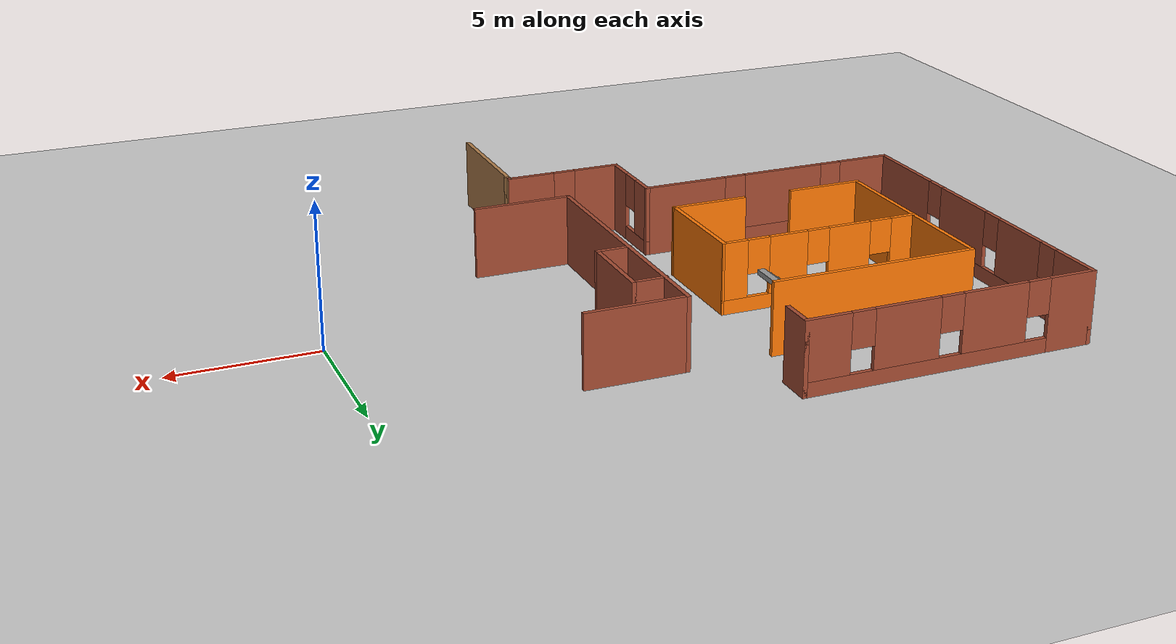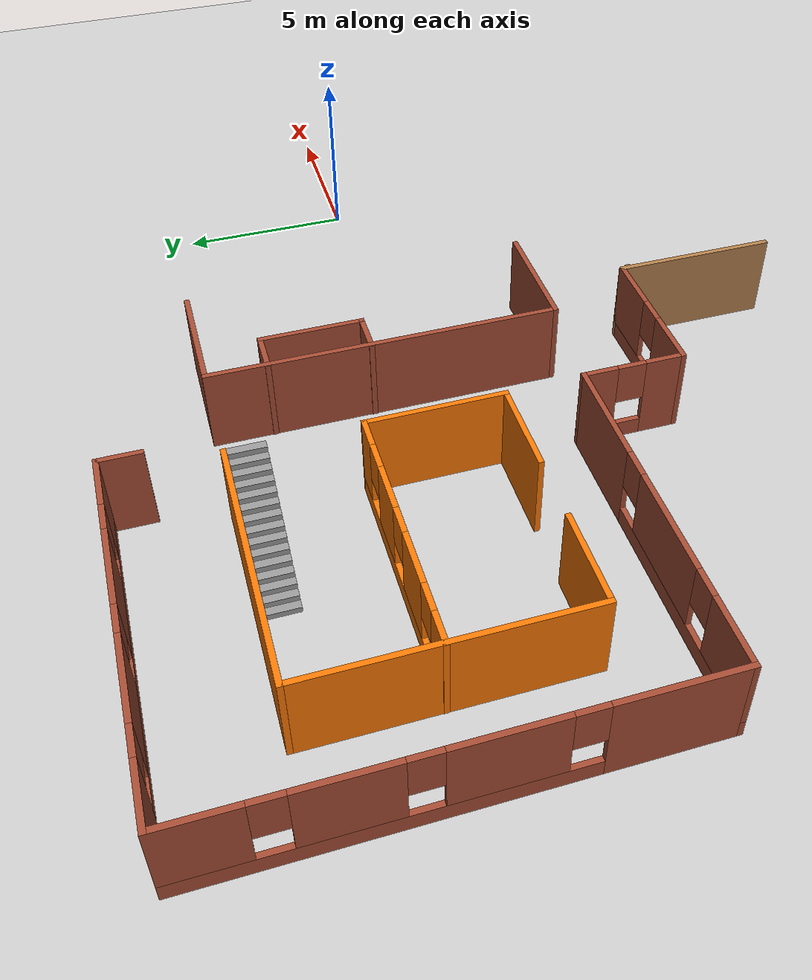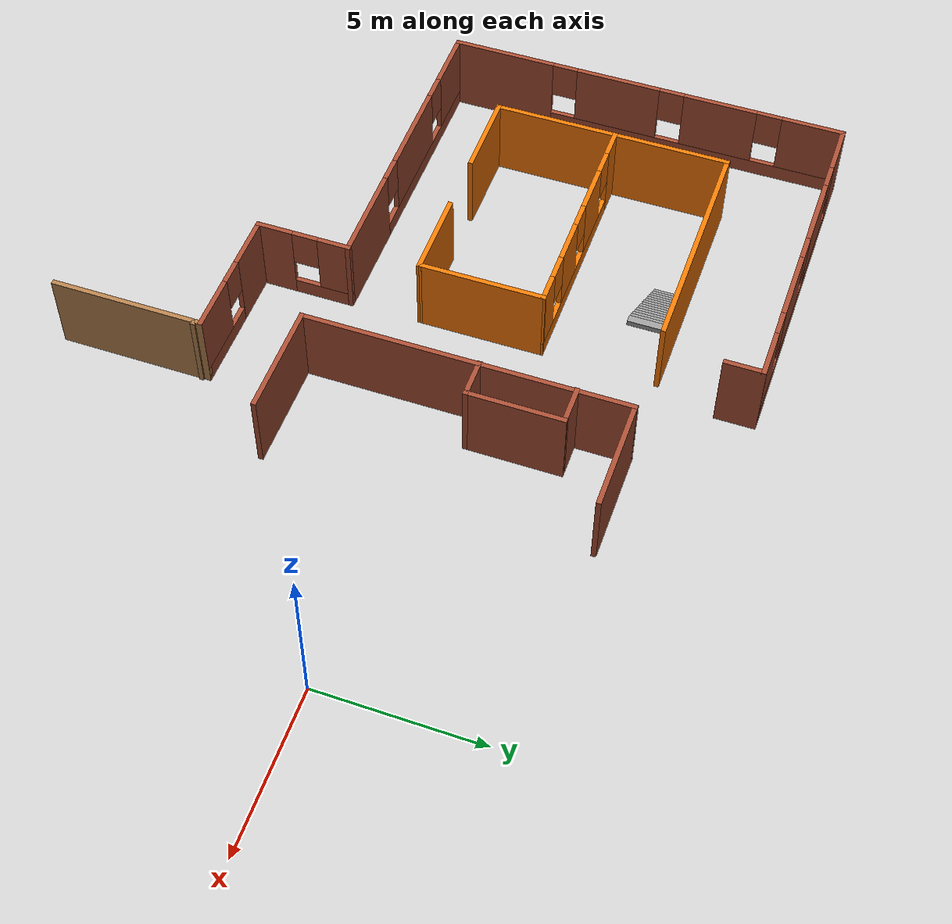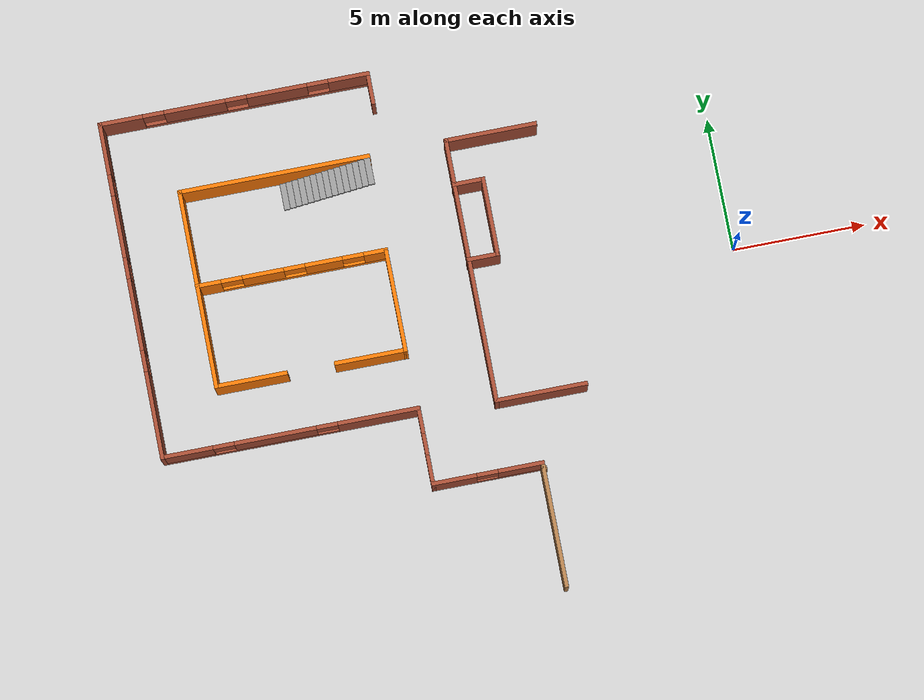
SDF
<sdf version="1.7">
 <world name="default">
  <model name="ground_plane">
   <static>1</static>
   <link name="link">
    <collision name="collision">
     <geometry><plane><normal>0 0 1</normal><size>100 100</size></plane></geometry>
     <surface><friction><ode><mu>100</mu><mu2>50</mu2></ode></friction></surface>
    </collision>
    <visual name="visual">
     <cast_shadows>0</cast_shadows>
     <geometry><plane><normal>0 0 1</normal><size>100 100</size></plane></geometry>
     <material>
      <script><uri>file://media/materials/scripts/gazebo.material</uri><name>Gazebo/Grey</name></script>
     </material>
    </visual>
   </link>
  </model>
  <model name="west_2">
   <pose>-7.94174 -1.25517 0 0 -0 0</pose>
   <link name="Stairs_4">
    <visual name="Stairs_4_Visual_0">
     <pose>-8.14297 6.41437 0.083333 0 -0 1.5708</pose>
     <geometry><box><size>1 0.233333 0.166667</size></box></geometry>
     <material>
      <script><uri>file://media/materials/scripts/gazebo.material</uri><name>Gazebo/Grey</name></script>
      <ambient>1 1 1 1</ambient>
     </material>
     <meta><layer>0</layer></meta>
    </visual>
    <collision name="Stairs_4_Collision_0">
     <geometry><box><size>1 0.233333 0.166667</size></box></geometry>
     <pose>-8.14297 6.41437 0.083333 0 -0 1.5708</pose>
    </collision>
    <visual name="Stairs_4_Visual_1">
     <pose>-7.90963 6.41437 0.25 0 -0 1.5708</pose>
     <geometry><box><size>1 0.233333 0.166667</size></box></geometry>
     <material>
      <script><uri>file://media/materials/scripts/gazebo.material</uri><name>Gazebo/Grey</name></script>
      <ambient>1 1 1 1</ambient>
     </material>
     <meta><layer>0</layer></meta>
    </visual>
    <collision name="Stairs_4_Collision_1">
     <geometry><box><size>1 0.233333 0.166667</size></box></geometry>
     <pose>-7.90963 6.41437 0.25 0 -0 1.5708</pose>
    </collision>
    <visual name="Stairs_4_Visual_2">
     <pose>-7.6763 6.41437 0.416667 0 -0 1.5708</pose>
     <geometry><box><size>1 0.233333 0.166667</size></box></geometry>
     <material>
      <script><uri>file://media/materials/scripts/gazebo.material</uri><name>Gazebo/Grey</name></script>
      <ambient>1 1 1 1</ambient>
     </material>
     <meta><layer>0</layer></meta>
    </visual>
    <collision name="Stairs_4_Collision_2">
     <geometry><box><size>1 0.233333 0.166667</size></box></geometry>
     <pose>-7.6763 6.41437 0.416667 0 -0 1.5708</pose>
    </collision>
    <visual name="Stairs_4_Visual_3">
     <pose>-7.44297 6.41437 0.583333 0 -0 1.5708</pose>
     <geometry><box><size>1 0.233333 0.166667</size></box></geometry>
     <material>
      <script><uri>file://media/materials/scripts/gazebo.material</uri><name>Gazebo/Grey</name></script>
      <ambient>1 1 1 1</ambient>
     </material>
     <meta><layer>0</layer></meta>
    </visual>
    <collision name="Stairs_4_Collision_3">
     <geometry><box><size>1 0.233333 0.166667</size></box></geometry>
     <pose>-7.44297 6.41437 0.583333 0 -0 1.5708</pose>
    </collision>
    <visual name="Stairs_4_Visual_4">
     <pose>-7.20963 6.41437 0.75 0 -0 1.5708</pose>
     <geometry><box><size>1 0.233333 0.166667</size></box></geometry>
     <material>
      <script><uri>file://media/materials/scripts/gazebo.material</uri><name>Gazebo/Grey</name></script>
      <ambient>1 1 1 1</ambient>
     </material>
     <meta><layer>0</layer></meta>
    </visual>
    <collision name="Stairs_4_Collision_4">
     <geometry><box><size>1 0.233333 0.166667</size></box></geometry>
     <pose>-7.20963 6.41437 0.75 0 -0 1.5708</pose>
    </collision>
    <visual name="Stairs_4_Visual_5">
     <pose>-6.9763 6.41437 0.916667 0 -0 1.5708</pose>
     <geometry><box><size>1 0.233333 0.166667</size></box></geometry>
     <material>
      <script><uri>file://media/materials/scripts/gazebo.material</uri><name>Gazebo/Grey</name></script>
      <ambient>1 1 1 1</ambient>
     </material>
     <meta><layer>0</layer></meta>
    </visual>
    <collision name="Stairs_4_Collision_5">
     <geometry><box><size>1 0.233333 0.166667</size></box></geometry>
     <pose>-6.9763 6.41437 0.916667 0 -0 1.5708</pose>
    </collision>
    <visual name="Stairs_4_Visual_6">
     <pose>-6.74297 6.41437 1.08333 0 -0 1.5708</pose>
     <geometry><box><size>1 0.233333 0.166667</size></box></geometry>
     <material>
      <script><uri>file://media/materials/scripts/gazebo.material</uri><name>Gazebo/Grey</name></script>
      <ambient>1 1 1 1</ambient>
     </material>
     <meta><layer>0</layer></meta>
    </visual>
    <collision name="Stairs_4_Collision_6">
     <geometry><box><size>1 0.233333 0.166667</size></box></geometry>
     <pose>-6.74297 6.41437 1.08333 0 -0 1.5708</pose>
    </collision>
    <visual name="Stairs_4_Visual_7">
     <pose>-6.50963 6.41437 1.25 0 -0 1.5708</pose>
     <geometry><box><size>1 0.233333 0.166667</size></box></geometry>
     <material>
      <script><uri>file://media/materials/scripts/gazebo.material</uri><name>Gazebo/Grey</name></script>
      <ambient>1 1 1 1</ambient>
     </material>
     <meta><layer>0</layer></meta>
    </visual>
    <collision name="Stairs_4_Collision_7">
     <geometry><box><size>1 0.233333 0.166667</size></box></geometry>
     <pose>-6.50963 6.41437 1.25 0 -0 1.5708</pose>
    </collision>
    <visual name="Stairs_4_Visual_8">
     <pose>-6.2763 6.41437 1.41667 0 -0 1.5708</pose>
     <geometry><box><size>1 0.233333 0.166667</size></box></geometry>
     <material>
      <script><uri>file://media/materials/scripts/gazebo.material</uri><name>Gazebo/Grey</name></script>
      <ambient>1 1 1 1</ambient>
     </material>
     <meta><layer>0</layer></meta>
    </visual>
    <collision name="Stairs_4_Collision_8">
     <geometry><box><size>1 0.233333 0.166667</size></box></geometry>
     <pose>-6.2763 6.41437 1.41667 0 -0 1.5708</pose>
    </collision>
    <visual name="Stairs_4_Visual_9">
     <pose>-6.04297 6.41437 1.58333 0 -0 1.5708</pose>
     <geometry><box><size>1 0.233333 0.166667</size></box></geometry>
     <material>
      <script><uri>file://media/materials/scripts/gazebo.material</uri><name>Gazebo/Grey</name></script>
      <ambient>1 1 1 1</ambient>
     </material>
     <meta><layer>0</layer></meta>
    </visual>
    <collision name="Stairs_4_Collision_9">
     <geometry><box><size>1 0.233333 0.166667</size></box></geometry>
     <pose>-6.04297 6.41437 1.58333 0 -0 1.5708</pose>
    </collision>
    <visual name="Stairs_4_Visual_10">
     <pose>-5.80963 6.41437 1.75 0 -0 1.5708</pose>
     <geometry><box><size>1 0.233333 0.166667</size></box></geometry>
     <material>
      <script><uri>file://media/materials/scripts/gazebo.material</uri><name>Gazebo/Grey</name></script>
      <ambient>1 1 1 1</ambient>
     </material>
     <meta><layer>0</layer></meta>
    </visual>
    <collision name="Stairs_4_Collision_10">
     <geometry><box><size>1 0.233333 0.166667</size></box></geometry>
     <pose>-5.80963 6.41437 1.75 0 -0 1.5708</pose>
    </collision>
    <visual name="Stairs_4_Visual_11">
     <pose>-5.5763 6.41437 1.91667 0 -0 1.5708</pose>
     <geometry><box><size>1 0.233333 0.166667</size></box></geometry>
     <material>
      <script><uri>file://media/materials/scripts/gazebo.material</uri><name>Gazebo/Grey</name></script>
      <ambient>1 1 1 1</ambient>
     </material>
     <meta><layer>0</layer></meta>
    </visual>
    <collision name="Stairs_4_Collision_11">
     <geometry><box><size>1 0.233333 0.166667</size></box></geometry>
     <pose>-5.5763 6.41437 1.91667 0 -0 1.5708</pose>
    </collision>
    <visual name="Stairs_4_Visual_12">
     <pose>-5.34297 6.41437 2.08333 0 -0 1.5708</pose>
     <geometry><box><size>1 0.233333 0.166667</size></box></geometry>
     <material>
      <script><uri>file://media/materials/scripts/gazebo.material</uri><name>Gazebo/Grey</name></script>
      <ambient>1 1 1 1</ambient>
     </material>
     <meta><layer>0</layer></meta>
    </visual>
    <collision name="Stairs_4_Collision_12">
     <geometry><box><size>1 0.233333 0.166667</size></box></geometry>
     <pose>-5.34297 6.41437 2.08333 0 -0 1.5708</pose>
    </collision>
    <visual name="Stairs_4_Visual_13">
     <pose>-5.10963 6.41437 2.25 0 -0 1.5708</pose>
     <geometry><box><size>1 0.233333 0.166667</size></box></geometry>
     <material>
      <script><uri>file://media/materials/scripts/gazebo.material</uri><name>Gazebo/Grey</name></script>
      <ambient>1 1 1 1</ambient>
     </material>
     <meta><layer>0</layer></meta>
    </visual>
    <collision name="Stairs_4_Collision_13">
     <geometry><box><size>1 0.233333 0.166667</size></box></geometry>
     <pose>-5.10963 6.41437 2.25 0 -0 1.5708</pose>
    </collision>
    <visual name="Stairs_4_Visual_14">
     <pose>-4.8763 6.41437 2.41667 0 -0 1.5708</pose>
     <geometry><box><size>1 0.233333 0.166667</size></box></geometry>
     <material>
      <script><uri>file://media/materials/scripts/gazebo.material</uri><name>Gazebo/Grey</name></script>
      <ambient>1 1 1 1</ambient>
     </material>
     <meta><layer>0</layer></meta>
    </visual>
    <collision name="Stairs_4_Collision_14">
     <geometry><box><size>1 0.233333 0.166667</size></box></geometry>
     <pose>-4.8763 6.41437 2.41667 0 -0 1.5708</pose>
    </collision>
   </link>
   <link name="Wall_33">
    <pose>-4.75 -4 0 0 -0 1.5708</pose>
    <visual name="Wall_33_Visual_0">
     <pose>-0.919405 0 1.25 0 -0 0</pose>
     <geometry><box><size>1.16119 0.15 2.5</size></box></geometry>
     <material>
      <script><uri>file://media/materials/scripts/gazebo.material</uri><name>Gazebo/Bricks</name></script>
      <ambient>1 1 1 1</ambient>
     </material>
     <meta><layer>0</layer></meta>
    </visual>
    <collision name="Wall_33_Collision_0">
     <geometry><box><size>1.16119 0.15 2.5</size></box></geometry>
     <pose>-0.919405 0 1.25 0 -0 0</pose>
    </collision>
    <visual name="Wall_33_Visual_1">
     <pose>0.580595 0 0.25 0 -0 0</pose>
     <geometry><box><size>1.83881 0.15 0.5</size></box></geometry>
     <material>
      <script><uri>file://media/materials/scripts/gazebo.material</uri><name>Gazebo/Bricks</name></script>
      <ambient>1 1 1 1</ambient>
     </material>
     <meta><layer>0</layer></meta>
    </visual>
    <collision name="Wall_33_Collision_1">
     <geometry><box><size>1.83881 0.15 0.5</size></box></geometry>
     <pose>0.580595 0 0.25 0 -0 0</pose>
    </collision>
    <visual name="Wall_33_Visual_2">
     <pose>0.980595 0 1.5 0 -0 0</pose>
     <geometry><box><size>1.03881 0.15 2</size></box></geometry>
     <material>
      <script><uri>file://media/materials/scripts/gazebo.material</uri><name>Gazebo/Bricks</name></script>
      <ambient>1 1 1 1</ambient>
     </material>
     <meta><layer>0</layer></meta>
    </visual>
    <collision name="Wall_33_Collision_2">
     <geometry><box><size>1.03881 0.15 2</size></box></geometry>
     <pose>0.980595 0 1.5 0 -0 0</pose>
    </collision>
    <visual name="Wall_33_Visual_3">
     <pose>0.06119 0 1.9 0 -0 0</pose>
     <geometry><box><size>0.8 0.15 1.2</size></box></geometry>
     <material>
      <script><uri>file://media/materials/scripts/gazebo.material</uri><name>Gazebo/Bricks</name></script>
      <ambient>1 1 1 1</ambient>
     </material>
     <meta><layer>0</layer></meta>
    </visual>
    <collision name="Wall_33_Collision_3">
     <geometry><box><size>0.8 0.15 1.2</size></box></geometry>
     <pose>0.06119 0 1.9 0 -0 0</pose>
    </collision>
   </link>
   <link name="Wall_34">
    <pose>-9.55 -2.575 0 0 -0 3.14159</pose>
    <visual name="Wall_34_Visual_0">
     <pose>-3.32251 0 1.25 0 -0 0</pose>
     <geometry><box><size>3.10499 0.15 2.5</size></box></geometry>
     <material>
      <script><uri>file://media/materials/scripts/gazebo.material</uri><name>Gazebo/Bricks</name></script>
      <ambient>1 1 1 1</ambient>
     </material>
     <meta><layer>0</layer></meta>
    </visual>
    <collision name="Wall_34_Collision_0">
     <geometry><box><size>3.10499 0.15 2.5</size></box></geometry>
     <pose>-3.32251 0 1.25 0 -0 0</pose>
    </collision>
    <visual name="Wall_34_Visual_1">
     <pose>1.55249 0 0.25 0 -0 0</pose>
     <geometry><box><size>6.64501 0.15 0.5</size></box></geometry>
     <material>
      <script><uri>file://media/materials/scripts/gazebo.material</uri><name>Gazebo/Bricks</name></script>
      <ambient>1 1 1 1</ambient>
     </material>
     <meta><layer>0</layer></meta>
    </visual>
    <collision name="Wall_34_Collision_1">
     <geometry><box><size>6.64501 0.15 0.5</size></box></geometry>
     <pose>1.55249 0 0.25 0 -0 0</pose>
    </collision>
    <visual name="Wall_34_Visual_2">
     <pose>0.566097 0 1.5 0 -0 0</pose>
     <geometry><box><size>3.07222 0.15 2</size></box></geometry>
     <material>
      <script><uri>file://media/materials/scripts/gazebo.material</uri><name>Gazebo/Bricks</name></script>
      <ambient>1 1 1 1</ambient>
     </material>
     <meta><layer>0</layer></meta>
    </visual>
    <collision name="Wall_34_Collision_2">
     <geometry><box><size>3.07222 0.15 2</size></box></geometry>
     <pose>0.566097 0 1.5 0 -0 0</pose>
    </collision>
    <visual name="Wall_34_Visual_3">
     <pose>3.8886 0 1.5 0 -0 0</pose>
     <geometry><box><size>1.97279 0.15 2</size></box></geometry>
     <material>
      <script><uri>file://media/materials/scripts/gazebo.material</uri><name>Gazebo/Bricks</name></script>
      <ambient>1 1 1 1</ambient>
     </material>
     <meta><layer>0</layer></meta>
    </visual>
    <collision name="Wall_34_Collision_3">
     <geometry><box><size>1.97279 0.15 2</size></box></geometry>
     <pose>3.8886 0 1.5 0 -0 0</pose>
    </collision>
    <visual name="Wall_34_Visual_4">
     <pose>-1.37001 0 1.9 0 -0 0</pose>
     <geometry><box><size>0.8 0.15 1.2</size></box></geometry>
     <material>
      <script><uri>file://media/materials/scripts/gazebo.material</uri><name>Gazebo/Bricks</name></script>
      <ambient>1 1 1 1</ambient>
     </material>
     <meta><layer>0</layer></meta>
    </visual>
    <collision name="Wall_34_Collision_4">
     <geometry><box><size>0.8 0.15 1.2</size></box></geometry>
     <pose>-1.37001 0 1.9 0 -0 0</pose>
    </collision>
    <visual name="Wall_34_Visual_5">
     <pose>2.50221 0 1.9 0 -0 0</pose>
     <geometry><box><size>0.8 0.15 1.2</size></box></geometry>
     <material>
      <script><uri>file://media/materials/scripts/gazebo.material</uri><name>Gazebo/Bricks</name></script>
      <ambient>1 1 1 1</ambient>
     </material>
     <meta><layer>0</layer></meta>
    </visual>
    <collision name="Wall_34_Collision_5">
     <geometry><box><size>0.8 0.15 1.2</size></box></geometry>
     <pose>2.50221 0 1.9 0 -0 0</pose>
    </collision>
   </link>
   <link name="Wall_35">
    <pose>-14.35 3.725 0 0 -0 1.5708</pose>
    <visual name="Wall_35_Visual_0">
     <pose>-4.72236 0 1.25 0 -0 0</pose>
     <geometry><box><size>3.30527 0.15 2.5</size></box></geometry>
     <material>
      <script><uri>file://media/materials/scripts/gazebo.material</uri><name>Gazebo/Bricks</name></script>
      <ambient>1 1 1 1</ambient>
     </material>
     <meta><layer>0</layer></meta>
    </visual>
    <collision name="Wall_35_Collision_0">
     <geometry><box><size>3.30527 0.15 2.5</size></box></geometry>
     <pose>-4.72236 0 1.25 0 -0 0</pose>
    </collision>
    <visual name="Wall_35_Visual_1">
     <pose>1.65264 0 0.25 0 -0 0</pose>
     <geometry><box><size>9.44473 0.15 0.5</size></box></geometry>
     <material>
      <script><uri>file://media/materials/scripts/gazebo.material</uri><name>Gazebo/Bricks</name></script>
      <ambient>1 1 1 1</ambient>
     </material>
     <meta><layer>0</layer></meta>
    </visual>
    <collision name="Wall_35_Collision_1">
     <geometry><box><size>9.44473 0.15 0.5</size></box></geometry>
     <pose>1.65264 0 0.25 0 -0 0</pose>
    </collision>
    <visual name="Wall_35_Visual_2">
     <pose>-0.914561 0 1.5 0 -0 0</pose>
     <geometry><box><size>2.71033 0.15 2</size></box></geometry>
     <material>
      <script><uri>file://media/materials/scripts/gazebo.material</uri><name>Gazebo/Bricks</name></script>
      <ambient>1 1 1 1</ambient>
     </material>
     <meta><layer>0</layer></meta>
    </visual>
    <collision name="Wall_35_Collision_2">
     <geometry><box><size>2.71033 0.15 2</size></box></geometry>
     <pose>-0.914561 0 1.5 0 -0 0</pose>
    </collision>
    <visual name="Wall_35_Visual_3">
     <pose>2.41483 0 1.5 0 -0 0</pose>
     <geometry><box><size>2.34844 0.15 2</size></box></geometry>
     <material>
      <script><uri>file://media/materials/scripts/gazebo.material</uri><name>Gazebo/Bricks</name></script>
      <ambient>1 1 1 1</ambient>
     </material>
     <meta><layer>0</layer></meta>
    </visual>
    <collision name="Wall_35_Collision_3">
     <geometry><box><size>2.34844 0.15 2</size></box></geometry>
     <pose>2.41483 0 1.5 0 -0 0</pose>
    </collision>
    <visual name="Wall_35_Visual_4">
     <pose>5.38202 0 1.5 0 -0 0</pose>
     <geometry><box><size>1.98595 0.15 2</size></box></geometry>
     <material>
      <script><uri>file://media/materials/scripts/gazebo.material</uri><name>Gazebo/Bricks</name></script>
      <ambient>1 1 1 1</ambient>
     </material>
     <meta><layer>0</layer></meta>
    </visual>
    <collision name="Wall_35_Collision_4">
     <geometry><box><size>1.98595 0.15 2</size></box></geometry>
     <pose>5.38202 0 1.5 0 -0 0</pose>
    </collision>
    <visual name="Wall_35_Visual_5">
     <pose>-2.66973 0 1.9 0 -0 0</pose>
     <geometry><box><size>0.8 0.15 1.2</size></box></geometry>
     <material>
      <script><uri>file://media/materials/scripts/gazebo.material</uri><name>Gazebo/Bricks</name></script>
      <ambient>1 1 1 1</ambient>
     </material>
     <meta><layer>0</layer></meta>
    </visual>
    <collision name="Wall_35_Collision_5">
     <geometry><box><size>0.8 0.15 1.2</size></box></geometry>
     <pose>-2.66973 0 1.9 0 -0 0</pose>
    </collision>
    <visual name="Wall_35_Visual_6">
     <pose>0.840605 0 1.9 0 -0 0</pose>
     <geometry><box><size>0.8 0.15 1.2</size></box></geometry>
     <material>
      <script><uri>file://media/materials/scripts/gazebo.material</uri><name>Gazebo/Bricks</name></script>
      <ambient>1 1 1 1</ambient>
     </material>
     <meta><layer>0</layer></meta>
    </visual>
    <collision name="Wall_35_Collision_6">
     <geometry><box><size>0.8 0.15 1.2</size></box></geometry>
     <pose>0.840605 0 1.9 0 -0 0</pose>
    </collision>
    <visual name="Wall_35_Visual_7">
     <pose>3.98905 0 1.9 0 -0 0</pose>
     <geometry><box><size>0.8 0.15 1.2</size></box></geometry>
     <material>
      <script><uri>file://media/materials/scripts/gazebo.material</uri><name>Gazebo/Bricks</name></script>
      <ambient>1 1 1 1</ambient>
     </material>
     <meta><layer>0</layer></meta>
    </visual>
    <collision name="Wall_35_Collision_7">
     <geometry><box><size>0.8 0.15 1.2</size></box></geometry>
     <pose>3.98905 0 1.9 0 -0 0</pose>
    </collision>
   </link>
   <link name="Wall_36">
    <pose>-9.3 10.025 0 0 -0 0</pose>
    <visual name="Wall_36_Visual_0">
     <pose>-4.28336 0 1.25 0 -0 0</pose>
     <geometry><box><size>1.68328 0.15 2.5</size></box></geometry>
     <material>
      <script><uri>file://media/materials/scripts/gazebo.material</uri><name>Gazebo/Bricks</name></script>
      <ambient>1 1 1 1</ambient>
     </material>
     <meta><layer>0</layer></meta>
    </visual>
    <collision name="Wall_36_Collision_0">
     <geometry><box><size>1.68328 0.15 2.5</size></box></geometry>
     <pose>-4.28336 0 1.25 0 -0 0</pose>
    </collision>
    <visual name="Wall_36_Visual_1">
     <pose>0.841639 0 0.25 0 -0 0</pose>
     <geometry><box><size>8.56672 0.15 0.5</size></box></geometry>
     <material>
      <script><uri>file://media/materials/scripts/gazebo.material</uri><name>Gazebo/Bricks</name></script>
      <ambient>1 1 1 1</ambient>
     </material>
     <meta><layer>0</layer></meta>
    </visual>
    <collision name="Wall_36_Collision_1">
     <geometry><box><size>8.56672 0.15 0.5</size></box></geometry>
     <pose>0.841639 0 0.25 0 -0 0</pose>
    </collision>
    <visual name="Wall_36_Visual_2">
     <pose>-1.48559 0 1.5 0 -0 0</pose>
     <geometry><box><size>2.31225 0.15 2</size></box></geometry>
     <material>
      <script><uri>file://media/materials/scripts/gazebo.material</uri><name>Gazebo/Bricks</name></script>
      <ambient>1 1 1 1</ambient>
     </material>
     <meta><layer>0</layer></meta>
    </visual>
    <collision name="Wall_36_Collision_2">
     <geometry><box><size>2.31225 0.15 2</size></box></geometry>
     <pose>-1.48559 0 1.5 0 -0 0</pose>
    </collision>
    <visual name="Wall_36_Visual_3">
     <pose>1.60857 0 1.5 0 -0 0</pose>
     <geometry><box><size>2.27606 0.15 2</size></box></geometry>
     <material>
      <script><uri>file://media/materials/scripts/gazebo.material</uri><name>Gazebo/Bricks</name></script>
      <ambient>1 1 1 1</ambient>
     </material>
     <meta><layer>0</layer></meta>
    </visual>
    <collision name="Wall_36_Collision_3">
     <geometry><box><size>2.27606 0.15 2</size></box></geometry>
     <pose>1.60857 0 1.5 0 -0 0</pose>
    </collision>
    <visual name="Wall_36_Visual_4">
     <pose>4.3358 0 1.5 0 -0 0</pose>
     <geometry><box><size>1.5784 0.15 2</size></box></geometry>
     <material>
      <script><uri>file://media/materials/scripts/gazebo.material</uri><name>Gazebo/Bricks</name></script>
      <ambient>1 1 1 1</ambient>
     </material>
     <meta><layer>0</layer></meta>
    </visual>
    <collision name="Wall_36_Collision_4">
     <geometry><box><size>1.5784 0.15 2</size></box></geometry>
     <pose>4.3358 0 1.5 0 -0 0</pose>
    </collision>
    <visual name="Wall_36_Visual_5">
     <pose>-3.04172 0 1.9 0 -0 0</pose>
     <geometry><box><size>0.8 0.15 1.2</size></box></geometry>
     <material>
      <script><uri>file://media/materials/scripts/gazebo.material</uri><name>Gazebo/Bricks</name></script>
      <ambient>1 1 1 1</ambient>
     </material>
     <meta><layer>0</layer></meta>
    </visual>
    <collision name="Wall_36_Collision_5">
     <geometry><box><size>0.8 0.15 1.2</size></box></geometry>
     <pose>-3.04172 0 1.9 0 -0 0</pose>
    </collision>
    <visual name="Wall_36_Visual_6">
     <pose>0.070534 0 1.9 0 -0 0</pose>
     <geometry><box><size>0.8 0.15 1.2</size></box></geometry>
     <material>
      <script><uri>file://media/materials/scripts/gazebo.material</uri><name>Gazebo/Bricks</name></script>
      <ambient>1 1 1 1</ambient>
     </material>
     <meta><layer>0</layer></meta>
    </visual>
    <collision name="Wall_36_Collision_6">
     <geometry><box><size>0.8 0.15 1.2</size></box></geometry>
     <pose>0.070534 0 1.9 0 -0 0</pose>
    </collision>
    <visual name="Wall_36_Visual_7">
     <pose>3.1466 0 1.9 0 -0 0</pose>
     <geometry><box><size>0.8 0.15 1.2</size></box></geometry>
     <material>
      <script><uri>file://media/materials/scripts/gazebo.material</uri><name>Gazebo/Bricks</name></script>
      <ambient>1 1 1 1</ambient>
     </material>
     <meta><layer>0</layer></meta>
    </visual>
    <collision name="Wall_36_Collision_7">
     <geometry><box><size>0.8 0.15 1.2</size></box></geometry>
     <pose>3.1466 0 1.9 0 -0 0</pose>
    </collision>
   </link>
   <link name="Wall_37">
    <collision name="Wall_37_Collision">
     <geometry><box><size>1.25 0.15 2.5</size></box></geometry>
     <pose>0 0 1.25 0 -0 0</pose>
    </collision>
    <visual name="Wall_37_Visual">
     <pose>0 0 1.25 0 -0 0</pose>
     <geometry><box><size>1.25 0.15 2.5</size></box></geometry>
     <material>
      <script><uri>file://media/materials/scripts/gazebo.material</uri><name>Gazebo/Bricks</name></script>
      <ambient>1 1 1 1</ambient>
     </material>
     <meta><layer>0</layer></meta>
    </visual>
    <pose>-4.25 9.475 0 0 -0 -1.5708</pose>
   </link>
   <link name="Wall_44">
    <collision name="Wall_44_Collision">
     <geometry><box><size>3.5 0.15 2.5</size></box></geometry>
     <pose>0 0 1.25 0 -0 0</pose>
    </collision>
    <visual name="Wall_44_Visual">
     <pose>0 0 1.25 0 -0 0</pose>
     <geometry><box><size>3.5 0.15 2.5</size></box></geometry>
     <material>
      <script><uri>file://media/materials/scripts/gazebo.material</uri><name>Gazebo/Bricks</name></script>
      <ambient>1 1 1 1</ambient>
     </material>
     <meta><layer>0</layer></meta>
    </visual>
    <pose>-0.199136 -2.84654 0 0 -0 3.14159</pose>
   </link>
   <link name="Wall_45">
    <collision name="Wall_45_Collision">
     <geometry><box><size>10 0.15 2.5</size></box></geometry>
     <pose>0 0 1.25 0 -0 0</pose>
    </collision>
    <visual name="Wall_45_Visual">
     <pose>0 0 1.25 0 -0 0</pose>
     <geometry><box><size>10 0.15 2.5</size></box></geometry>
     <material>
      <script><uri>file://media/materials/scripts/gazebo.material</uri><name>Gazebo/Bricks</name></script>
      <ambient>1 1 1 1</ambient>
     </material>
     <meta><layer>0</layer></meta>
    </visual>
    <pose>-1.87414 2.07846 0 0 -0 1.5708</pose>
   </link>
   <link name="Wall_46">
    <collision name="Wall_46_Collision">
     <geometry><box><size>3.5 0.15 2.5</size></box></geometry>
     <pose>0 0 1.25 0 -0 0</pose>
    </collision>
    <visual name="Wall_46_Visual">
     <pose>0 0 1.25 0 -0 0</pose>
     <geometry><box><size>3.5 0.15 2.5</size></box></geometry>
     <material>
      <script><uri>file://media/materials/scripts/gazebo.material</uri><name>Gazebo/Bricks</name></script>
      <ambient>1 1 1 1</ambient>
     </material>
     <meta><layer>0</layer></meta>
    </visual>
    <pose>-0.199136 7.00346 0 0 -0 0</pose>
   </link>
   <link name="Wall_50">
    <collision name="Wall_50_Collision">
     <geometry><box><size>1.25 0.15 2.5</size></box></geometry>
     <pose>0 0 1.25 0 -0 0</pose>
    </collision>
    <visual name="Wall_50_Visual">
     <pose>0 0 1.25 0 -0 0</pose>
     <geometry><box><size>1.25 0.15 2.5</size></box></geometry>
     <material>
      <script><uri>file://media/materials/scripts/gazebo.material</uri><name>Gazebo/Bricks</name></script>
      <ambient>1 1 1 1</ambient>
     </material>
     <meta><layer>0</layer></meta>
    </visual>
    <pose>-1.34332 5.33184 0 0 -0 0</pose>
   </link>
   <link name="Wall_51">
    <collision name="Wall_51_Collision">
     <geometry><box><size>3 0.15 2.5</size></box></geometry>
     <pose>0 0 1.25 0 -0 0</pose>
    </collision>
    <visual name="Wall_51_Visual">
     <pose>0 0 1.25 0 -0 0</pose>
     <geometry><box><size>3 0.15 2.5</size></box></geometry>
     <material>
      <script><uri>file://media/materials/scripts/gazebo.material</uri><name>Gazebo/Bricks</name></script>
      <ambient>1 1 1 1</ambient>
     </material>
     <meta><layer>0</layer></meta>
    </visual>
    <pose>-0.79332 3.90684 0 0 -0 -1.5708</pose>
   </link>
   <link name="Wall_52">
    <collision name="Wall_52_Collision">
     <geometry><box><size>1.25 0.15 2.5</size></box></geometry>
     <pose>0 0 1.25 0 -0 0</pose>
    </collision>
    <visual name="Wall_52_Visual">
     <pose>0 0 1.25 0 -0 0</pose>
     <geometry><box><size>1.25 0.15 2.5</size></box></geometry>
     <material>
      <script><uri>file://media/materials/scripts/gazebo.material</uri><name>Gazebo/Bricks</name></script>
      <ambient>1 1 1 1</ambient>
     </material>
     <meta><layer>0</layer></meta>
    </visual>
    <pose>-1.34332 2.48184 0 0 -0 3.14159</pose>
   </link>
   <link name="Wall_55">
    <collision name="Wall_55_Collision">
     <geometry><box><size>7.25 0.15 2.5</size></box></geometry>
     <pose>0 0 1.25 0 -0 0</pose>
    </collision>
    <visual name="Wall_55_Visual">
     <pose>0 0 1.25 0 -0 0</pose>
     <geometry><box><size>7.25 0.15 2.5</size></box></geometry>
     <material>
      <script><uri>file://media/materials/scripts/gazebo.material</uri><name>Gazebo/Grey</name></script>
      <ambient>0.996078 0.47451 0.0196078 1</ambient>
     </material>
     <meta><layer>0</layer></meta>
    </visual>
    <pose>-8.36402 6.98212 0 0 -0 3.14159</pose>
   </link>
   <link name="Wall_56">
    <collision name="Wall_56_Collision">
     <geometry><box><size>7.5 0.15 2.5</size></box></geometry>
     <pose>0 0 1.25 0 -0 0</pose>
    </collision>
    <visual name="Wall_56_Visual">
     <pose>0 0 1.25 0 -0 0</pose>
     <geometry><box><size>7.5 0.15 2.5</size></box></geometry>
     <material>
      <script><uri>file://media/materials/scripts/gazebo.material</uri><name>Gazebo/Grey</name></script>
      <ambient>0.996078 0.47451 0.0196078 1</ambient>
     </material>
     <meta><layer>0</layer></meta>
    </visual>
    <pose>-11.914 3.30712 0 0 -0 -1.5708</pose>
   </link>
   <link name="Wall_57">
    <collision name="Wall_57_Collision">
     <geometry><box><size>2.75 0.15 2.5</size></box></geometry>
     <pose>0 0 1.25 0 -0 0</pose>
    </collision>
    <visual name="Wall_57_Visual">
     <pose>0 0 1.25 0 -0 0</pose>
     <geometry><box><size>2.75 0.15 2.5</size></box></geometry>
     <material>
      <script><uri>file://media/materials/scripts/gazebo.material</uri><name>Gazebo/Grey</name></script>
      <ambient>0.996078 0.47451 0.0196078 1</ambient>
     </material>
     <meta><layer>0</layer></meta>
    </visual>
    <pose>-10.614 -0.367881 0 0 -0 0</pose>
   </link>
   <link name="Wall_61">
    <collision name="Wall_61_Collision">
     <geometry><box><size>2.75 0.15 2.5</size></box></geometry>
     <pose>0 0 1.25 0 -0 0</pose>
    </collision>
    <visual name="Wall_61_Visual">
     <pose>0 0 1.25 0 -0 0</pose>
     <geometry><box><size>2.75 0.15 2.5</size></box></geometry>
     <material>
      <script><uri>file://media/materials/scripts/gazebo.material</uri><name>Gazebo/Grey</name></script>
      <ambient>0.996078 0.47451 0.0196078 1</ambient>
     </material>
     <meta><layer>0</layer></meta>
    </visual>
    <pose>-6.11402 -0.367881 0 0 -0 3.14159</pose>
   </link>
   <link name="Wall_67">
    <pose>-8.37276 3.41749 0 0 -0 0</pose>
    <visual name="Wall_67_Visual_0">
     <pose>-3.14239 0 1.25 0 -0 0</pose>
     <geometry><box><size>0.965215 0.15 2.5</size></box></geometry>
     <material>
      <script><uri>file://media/materials/scripts/gazebo.material</uri><name>Gazebo/Grey</name></script>
      <ambient>0.996078 0.47451 0.0196078 1</ambient>
     </material>
     <meta><layer>0</layer></meta>
    </visual>
    <collision name="Wall_67_Collision_0">
     <geometry><box><size>0.965215 0.15 2.5</size></box></geometry>
     <pose>-3.14239 0 1.25 0 -0 0</pose>
    </collision>
    <visual name="Wall_67_Visual_1">
     <pose>0.482608 0 0.25 0 -0 0</pose>
     <geometry><box><size>6.28479 0.15 0.5</size></box></geometry>
     <material>
      <script><uri>file://media/materials/scripts/gazebo.material</uri><name>Gazebo/Grey</name></script>
      <ambient>0.996078 0.47451 0.0196078 1</ambient>
     </material>
     <meta><layer>0</layer></meta>
    </visual>
    <collision name="Wall_67_Collision_1">
     <geometry><box><size>6.28479 0.15 0.5</size></box></geometry>
     <pose>0.482608 0 0.25 0 -0 0</pose>
    </collision>
    <visual name="Wall_67_Visual_2">
     <pose>-1.07971 0 1.5 0 -0 0</pose>
     <geometry><box><size>1.56015 0.15 2</size></box></geometry>
     <material>
      <script><uri>file://media/materials/scripts/gazebo.material</uri><name>Gazebo/Grey</name></script>
      <ambient>0.996078 0.47451 0.0196078 1</ambient>
     </material>
     <meta><layer>0</layer></meta>
    </visual>
    <collision name="Wall_67_Collision_2">
     <geometry><box><size>1.56015 0.15 2</size></box></geometry>
     <pose>-1.07971 0 1.5 0 -0 0</pose>
    </collision>
    <visual name="Wall_67_Visual_3">
     <pose>1.20177 0 1.5 0 -0 0</pose>
     <geometry><box><size>1.40281 0.15 2</size></box></geometry>
     <material>
      <script><uri>file://media/materials/scripts/gazebo.material</uri><name>Gazebo/Grey</name></script>
      <ambient>0.996078 0.47451 0.0196078 1</ambient>
     </material>
     <meta><layer>0</layer></meta>
    </visual>
    <collision name="Wall_67_Collision_3">
     <geometry><box><size>1.40281 0.15 2</size></box></geometry>
     <pose>1.20177 0 1.5 0 -0 0</pose>
    </collision>
    <visual name="Wall_67_Visual_4">
     <pose>3.16409 0 1.5 0 -0 0</pose>
     <geometry><box><size>0.921823 0.15 2</size></box></geometry>
     <material>
      <script><uri>file://media/materials/scripts/gazebo.material</uri><name>Gazebo/Grey</name></script>
      <ambient>0.996078 0.47451 0.0196078 1</ambient>
     </material>
     <meta><layer>0</layer></meta>
    </visual>
    <collision name="Wall_67_Collision_4">
     <geometry><box><size>0.921823 0.15 2</size></box></geometry>
     <pose>3.16409 0 1.5 0 -0 0</pose>
    </collision>
    <visual name="Wall_67_Visual_5">
     <pose>-2.25978 0 1.9 0 -0 0</pose>
     <geometry><box><size>0.8 0.15 1.2</size></box></geometry>
     <material>
      <script><uri>file://media/materials/scripts/gazebo.material</uri><name>Gazebo/Grey</name></script>
      <ambient>0.996078 0.47451 0.0196078 1</ambient>
     </material>
     <meta><layer>0</layer></meta>
    </visual>
    <collision name="Wall_67_Collision_5">
     <geometry><box><size>0.8 0.15 1.2</size></box></geometry>
     <pose>-2.25978 0 1.9 0 -0 0</pose>
    </collision>
    <visual name="Wall_67_Visual_6">
     <pose>0.100368 0 1.9 0 -0 0</pose>
     <geometry><box><size>0.8 0.15 1.2</size></box></geometry>
     <material>
      <script><uri>file://media/materials/scripts/gazebo.material</uri><name>Gazebo/Grey</name></script>
      <ambient>0.996078 0.47451 0.0196078 1</ambient>
     </material>
     <meta><layer>0</layer></meta>
    </visual>
    <collision name="Wall_67_Collision_6">
     <geometry><box><size>0.8 0.15 1.2</size></box></geometry>
     <pose>0.100368 0 1.9 0 -0 0</pose>
    </collision>
    <visual name="Wall_67_Visual_7">
     <pose>2.30318 0 1.9 0 -0 0</pose>
     <geometry><box><size>0.8 0.15 1.2</size></box></geometry>
     <material>
      <script><uri>file://media/materials/scripts/gazebo.material</uri><name>Gazebo/Grey</name></script>
      <ambient>0.996078 0.47451 0.0196078 1</ambient>
     </material>
     <meta><layer>0</layer></meta>
    </visual>
    <collision name="Wall_67_Collision_7">
     <geometry><box><size>0.8 0.15 1.2</size></box></geometry>
     <pose>2.30318 0 1.9 0 -0 0</pose>
    </collision>
   </link>
   <link name="Wall_83">
    <collision name="Wall_83_Collision">
     <geometry><box><size>0.15 0.15 2.5</size></box></geometry>
     <pose>0 0 1.25 0 -0 0</pose>
    </collision>
    <visual name="Wall_83_Visual">
     <pose>0 0 1.25 0 -0 0</pose>
     <geometry><box><size>0.15 0.15 2.5</size></box></geometry>
     <material>
      <script><uri>file://media/materials/scripts/gazebo.material</uri><name>Gazebo/Wood</name></script>
      <ambient>1 1 1 1</ambient>
     </material>
     <meta><layer>0</layer></meta>
    </visual>
    <pose>-0.598042 -5.62693 0 0 -0 0</pose>
   </link>
   <link name="Wall_88">
    <pose>-2.7 -5.425 0 0 -0 0</pose>
    <visual name="Wall_88_Visual_0">
     <pose>-1.27022 0 1.25 0 -0 0</pose>
     <geometry><box><size>1.70955 0.15 2.5</size></box></geometry>
     <material>
      <script><uri>file://media/materials/scripts/gazebo.material</uri><name>Gazebo/Bricks</name></script>
      <ambient>1 1 1 1</ambient>
     </material>
     <meta><layer>0</layer></meta>
    </visual>
    <collision name="Wall_88_Collision_0">
     <geometry><box><size>1.70955 0.15 2.5</size></box></geometry>
     <pose>-1.27022 0 1.25 0 -0 0</pose>
    </collision>
    <visual name="Wall_88_Visual_1">
     <pose>0.854777 0 0.25 0 -0 0</pose>
     <geometry><box><size>2.54045 0.15 0.5</size></box></geometry>
     <material>
      <script><uri>file://media/materials/scripts/gazebo.material</uri><name>Gazebo/Bricks</name></script>
      <ambient>1 1 1 1</ambient>
     </material>
     <meta><layer>0</layer></meta>
    </visual>
    <collision name="Wall_88_Collision_1">
     <geometry><box><size>2.54045 0.15 0.5</size></box></geometry>
     <pose>0.854777 0 0.25 0 -0 0</pose>
    </collision>
    <visual name="Wall_88_Visual_2">
     <pose>1.25478 0 1.5 0 -0 0</pose>
     <geometry><box><size>1.74045 0.15 2</size></box></geometry>
     <material>
      <script><uri>file://media/materials/scripts/gazebo.material</uri><name>Gazebo/Bricks</name></script>
      <ambient>1 1 1 1</ambient>
     </material>
     <meta><layer>0</layer></meta>
    </visual>
    <collision name="Wall_88_Collision_2">
     <geometry><box><size>1.74045 0.15 2</size></box></geometry>
     <pose>1.25478 0 1.5 0 -0 0</pose>
    </collision>
    <visual name="Wall_88_Visual_3">
     <pose>-0.015447 0 1.9 0 -0 0</pose>
     <geometry><box><size>0.8 0.15 1.2</size></box></geometry>
     <material>
      <script><uri>file://media/materials/scripts/gazebo.material</uri><name>Gazebo/Bricks</name></script>
      <ambient>1 1 1 1</ambient>
     </material>
     <meta><layer>0</layer></meta>
    </visual>
    <collision name="Wall_88_Collision_3">
     <geometry><box><size>0.8 0.15 1.2</size></box></geometry>
     <pose>-0.015447 0 1.9 0 -0 0</pose>
    </collision>
   </link>
   <link name="Wall_96">
    <collision name="Wall_96_Collision">
     <geometry><box><size>4.75 0.15 2.5</size></box></geometry>
     <pose>0 0 1.25 0 -0 0</pose>
    </collision>
    <visual name="Wall_96_Visual">
     <pose>0 0 1.25 0 -0 0</pose>
     <geometry><box><size>4.75 0.15 2.5</size></box></geometry>
     <material>
      <script><uri>file://media/materials/scripts/gazebo.material</uri><name>Gazebo/Wood</name></script>
      <ambient>1 1 1 1</ambient>
     </material>
     <meta><layer>0</layer></meta>
    </visual>
    <pose>-0.65 -7.725 0 0 -0 -1.5708</pose>
   </link>
   <link name="Wall_98">
    <collision name="Wall_98_Collision">
     <geometry><box><size>3.93538 0.15 2.5</size></box></geometry>
     <pose>0 0 1.25 0 -0 0</pose>
    </collision>
    <visual name="Wall_98_Visual">
     <pose>0 0 1.25 0 -0 0</pose>
     <geometry><box><size>3.93538 0.15 2.5</size></box></geometry>
     <material>
      <script><uri>file://media/materials/scripts/gazebo.material</uri><name>Gazebo/Grey</name></script>
      <ambient>0.996078 0.47451 0.0196078 1</ambient>
     </material>
     <meta><layer>0</layer></meta>
    </visual>
    <pose>-4.81839 1.52481 0 0 -0 -1.56849</pose>
   </link>
   <static>1</static>
  </model>
 </world>
</sdf>
